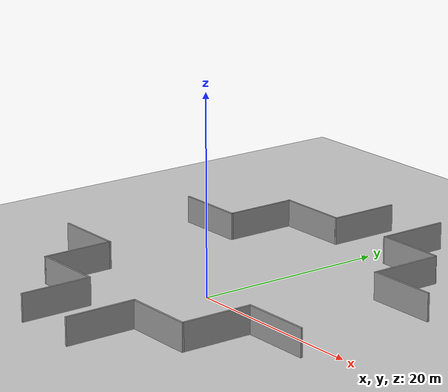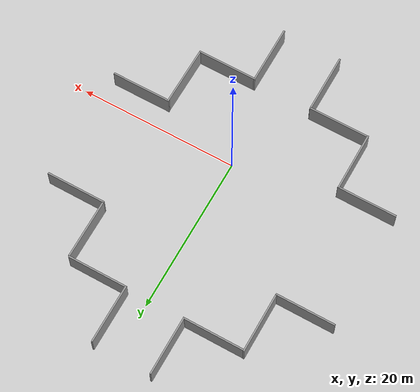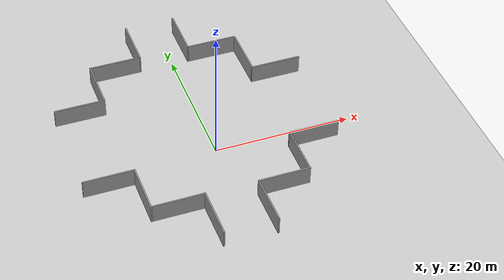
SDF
<sdf version="1.6">
 <world name="default">
  <light name="sun" type="directional">
   <pose>0 0 10 0 -0 0</pose>
   <diffuse>0.8 0.8 0.8 1</diffuse>
   <specular>0.1 0.1 0.1 1</specular>
   <attenuation>
    <range>1000</range>
    <constant>0.9</constant>
    <linear>0.01</linear>
    <quadratic>0.001</quadratic>
   </attenuation>
   <direction>-0.5 0.5 -1</direction>
  </light>
  <model name="ground_plane">
   <static>1</static>
   <link name="link">
    <collision name="collision">
     <geometry><plane><normal>0 0 1</normal><size>100 100</size></plane></geometry>
     <surface><friction><ode><mu>100</mu><mu2>50</mu2></ode></friction></surface>
    </collision>
    <visual name="visual">
     <cast_shadows>0</cast_shadows>
     <geometry><plane><normal>0 0 1</normal><size>100 100</size></plane></geometry>
     <material>
      <script><uri>file://media/materials/scripts/gazebo.material</uri><name>Gazebo/Grey</name></script>
     </material>
    </visual>
   </link>
  </model>
  <gravity>0 0 -9.8</gravity>
  <magnetic_field>6e-06 2.3e-05 -4.2e-05</magnetic_field>
  <atmosphere type="adiabatic"/>
  <physics name="default_physics" default="0" type="ode">
   <max_step_size>0.001</max_step_size>
   <real_time_factor>1</real_time_factor>
   <real_time_update_rate>1000</real_time_update_rate>
  </physics>
  <scene><ambient>0.4 0.4 0.4 1</ambient><background>0.7 0.7 0.7 1</background><shadows>1</shadows></scene>
  <spherical_coordinates>
   <surface_model>EARTH_WGS84</surface_model>
   <latitude_deg>0</latitude_deg>
   <longitude_deg>0</longitude_deg>
   <elevation>0</elevation>
   <heading_deg>0</heading_deg>
  </spherical_coordinates>
  <model name="grey_wall">
   <static>1</static>
   <link name="link">
    <pose>0 0 1.4 0 -0 0</pose>
    <collision name="collision"><geometry><box><size>7.5 0.2 2.8</size></box></geometry></collision>
    <visual name="visual">
     <cast_shadows>0</cast_shadows>
     <geometry><box><size>7.5 0.2 2.8</size></box></geometry>
     <material>
      <script>
       <uri>model://grey_wall/materials/scripts</uri>
       <uri>model://grey_wall/materials/textures</uri>
       <name>vrc/grey_wall</name>
      </script>
     </material>
    </visual>
   </link>
   <pose>-8.69444 -9.87973 0 0 -0 0</pose>
  </model>
  <model name="grey_wall_0">
   <static>1</static>
   <link name="link">
    <pose>0 0 1.4 0 -0 0</pose>
    <collision name="collision"><geometry><box><size>7.5 0.2 2.8</size></box></geometry></collision>
    <visual name="visual">
     <cast_shadows>0</cast_shadows>
     <geometry><box><size>7.5 0.2 2.8</size></box></geometry>
     <material>
      <script>
       <uri>model://grey_wall/materials/scripts</uri>
       <uri>model://grey_wall/materials/textures</uri>
       <name>vrc/grey_wall</name>
      </script>
     </material>
    </visual>
   </link>
   <pose>6.33409 -10.0577 0 0 -0 0</pose>
  </model>
  <model name="grey_wall_0_clone">
   <static>1</static>
   <link name="link">
    <pose>0 0 1.4 0 -0 0</pose>
    <collision name="collision"><geometry><box><size>7.5 0.2 2.8</size></box></geometry></collision>
    <visual name="visual">
     <cast_shadows>0</cast_shadows>
     <geometry><box><size>7.5 0.2 2.8</size></box></geometry>
     <material>
      <script>
       <uri>model://grey_wall/materials/scripts</uri>
       <uri>model://grey_wall/materials/textures</uri>
       <name>vrc/grey_wall</name>
      </script>
     </material>
    </visual>
   </link>
   <pose>10.0162 -6.24499 0 0 -0 1.56168</pose>
  </model>
  <model name="grey_wall_0_clone_0">
   <static>1</static>
   <link name="link">
    <pose>0 0 1.4 0 -0 0</pose>
    <collision name="collision"><geometry><box><size>7.5 0.2 2.8</size></box></geometry></collision>
    <visual name="visual">
     <cast_shadows>0</cast_shadows>
     <geometry><box><size>7.5 0.2 2.8</size></box></geometry>
     <material>
      <script>
       <uri>model://grey_wall/materials/scripts</uri>
       <uri>model://grey_wall/materials/textures</uri>
       <name>vrc/grey_wall</name>
      </script>
     </material>
    </visual>
   </link>
   <pose>6.23066 19.8835 0 0 -0 0</pose>
  </model>
  <model name="grey_wall_0_clone_2">
   <static>1</static>
   <link name="link">
    <pose>0 0 1.4 0 -0 0</pose>
    <collision name="collision"><geometry><box><size>7.5 0.2 2.8</size></box></geometry></collision>
    <visual name="visual">
     <cast_shadows>0</cast_shadows>
     <geometry><box><size>7.5 0.2 2.8</size></box></geometry>
     <material>
      <script>
       <uri>model://grey_wall/materials/scripts</uri>
       <uri>model://grey_wall/materials/textures</uri>
       <name>vrc/grey_wall</name>
      </script>
     </material>
    </visual>
   </link>
   <pose>-8.79842 19.9113 0 0 -0 0</pose>
  </model>
  <model name="grey_wall_0_clone_clone_clone_clone">
   <static>1</static>
   <link name="link">
    <pose>0 0 1.4 0 -0 0</pose>
    <collision name="collision"><geometry><box><size>7.5 0.2 2.8</size></box></geometry></collision>
    <visual name="visual">
     <cast_shadows>0</cast_shadows>
     <geometry><box><size>7.5 0.2 2.8</size></box></geometry>
     <material>
      <script>
       <uri>model://grey_wall/materials/scripts</uri>
       <uri>model://grey_wall/materials/textures</uri>
       <name>vrc/grey_wall</name>
      </script>
     </material>
    </visual>
   </link>
   <pose>-12.5609 -6.23551 0 0 -0 1.57402</pose>
  </model>
  <model name="grey_wall_0_clone_clone_clone_clone_1_clone">
   <static>1</static>
   <link name="link">
    <pose>0 0 1.4 0 -0 0</pose>
    <collision name="collision"><geometry><box><size>7.5 0.2 2.8</size></box></geometry></collision>
    <visual name="visual">
     <cast_shadows>0</cast_shadows>
     <geometry><box><size>7.5 0.2 2.8</size></box></geometry>
     <material>
      <script>
       <uri>model://grey_wall/materials/scripts</uri>
       <uri>model://grey_wall/materials/textures</uri>
       <name>vrc/grey_wall</name>
      </script>
     </material>
    </visual>
   </link>
   <pose>-12.598 16.2966 0 0 -0 1.57402</pose>
  </model>
  <model name="grey_wall_0_clone_clone_clone_clone_2">
   <static>1</static>
   <link name="link">
    <pose>0 0 1.4 0 -0 0</pose>
    <collision name="collision"><geometry><box><size>7.5 0.2 2.8</size></box></geometry></collision>
    <visual name="visual">
     <cast_shadows>0</cast_shadows>
     <geometry><box><size>7.5 0.2 2.8</size></box></geometry>
     <material>
      <script>
       <uri>model://grey_wall/materials/scripts</uri>
       <uri>model://grey_wall/materials/textures</uri>
       <name>vrc/grey_wall</name>
      </script>
     </material>
    </visual>
   </link>
   <pose>10.0056 16.0709 0 0 -0 1.57402</pose>
  </model>
  <model name="grey_wall_0_clone_clone_clone_clone_0_clone">
   <static>1</static>
   <link name="link">
    <pose>0 0 1.4 0 -0 0</pose>
    <collision name="collision"><geometry><box><size>7.5 0.2 2.8</size></box></geometry></collision>
    <visual name="visual">
     <cast_shadows>0</cast_shadows>
     <geometry><box><size>7.5 0.2 2.8</size></box></geometry>
     <material>
      <script>
       <uri>model://grey_wall/materials/scripts</uri>
       <uri>model://grey_wall/materials/textures</uri>
       <name>vrc/grey_wall</name>
      </script>
     </material>
    </visual>
   </link>
   <pose>-4.97231 23.5761 0 0 -0 1.57402</pose>
  </model>
  <model name="grey_wall_0_clone_clone_clone_clone_0_clone_0">
   <static>1</static>
   <link name="link">
    <pose>0 0 1.4 0 -0 0</pose>
    <collision name="collision"><geometry><box><size>7.5 0.2 2.8</size></box></geometry></collision>
    <visual name="visual">
     <cast_shadows>0</cast_shadows>
     <geometry><box><size>7.5 0.2 2.8</size></box></geometry>
     <material>
      <script>
       <uri>model://grey_wall/materials/scripts</uri>
       <uri>model://grey_wall/materials/textures</uri>
       <name>vrc/grey_wall</name>
      </script>
     </material>
    </visual>
   </link>
   <pose>2.52334 23.5333 0 0 -0 1.57402</pose>
  </model>
  <model name="grey_wall_clone">
   <static>1</static>
   <link name="link">
    <pose>0 0 1.4 0 -0 0</pose>
    <collision name="collision"><geometry><box><size>7.5 0.2 2.8</size></box></geometry></collision>
    <visual name="visual">
     <cast_shadows>0</cast_shadows>
     <geometry><box><size>7.5 0.2 2.8</size></box></geometry>
     <material>
      <script>
       <uri>model://grey_wall/materials/scripts</uri>
       <uri>model://grey_wall/materials/textures</uri>
       <name>vrc/grey_wall</name>
      </script>
     </material>
    </visual>
   </link>
   <pose>-16.2118 -2.53005 0 0 -0 0</pose>
  </model>
  <model name="grey_wall_clone_0">
   <static>1</static>
   <link name="link">
    <pose>0 0 1.4 0 -0 0</pose>
    <collision name="collision"><geometry><box><size>7.5 0.2 2.8</size></box></geometry></collision>
    <visual name="visual">
     <cast_shadows>0</cast_shadows>
     <geometry><box><size>7.5 0.2 2.8</size></box></geometry>
     <material>
      <script>
       <uri>model://grey_wall/materials/scripts</uri>
       <uri>model://grey_wall/materials/textures</uri>
       <name>vrc/grey_wall</name>
      </script>
     </material>
    </visual>
   </link>
   <pose>-16.2433 12.4275 0 0 -0 0</pose>
  </model>
  <model name="grey_wall_clone_clone">
   <static>1</static>
   <link name="link">
    <pose>0 0 1.4 0 -0 0</pose>
    <collision name="collision"><geometry><box><size>7.5 0.2 2.8</size></box></geometry></collision>
    <visual name="visual">
     <cast_shadows>0</cast_shadows>
     <geometry><box><size>7.5 0.2 2.8</size></box></geometry>
     <material>
      <script>
       <uri>model://grey_wall/materials/scripts</uri>
       <uri>model://grey_wall/materials/textures</uri>
       <name>vrc/grey_wall</name>
      </script>
     </material>
    </visual>
   </link>
   <pose>13.679 -2.57328 0 0 -0 0</pose>
  </model>
  <model name="grey_wall_clone_clone_0">
   <static>1</static>
   <link name="link">
    <pose>0 0 1.4 0 -0 0</pose>
    <collision name="collision"><geometry><box><size>7.5 0.2 2.8</size></box></geometry></collision>
    <visual name="visual">
     <cast_shadows>0</cast_shadows>
     <geometry><box><size>7.5 0.2 2.8</size></box></geometry>
     <material>
      <script>
       <uri>model://grey_wall/materials/scripts</uri>
       <uri>model://grey_wall/materials/textures</uri>
       <name>vrc/grey_wall</name>
      </script>
     </material>
    </visual>
   </link>
   <pose>13.6807 12.2639 0 0 -0 0</pose>
  </model>
  <model name="ball_bearing">
   <link name="link">
    <pose>0 0 0.003 0 -0 0</pose>
    <inertial>
     <mass>0.0011</mass>
     <inertia>
      <ixx>3.96e-09</ixx>
      <ixy>0</ixy>
      <ixz>0</ixz>
      <iyy>3.96e-09</iyy>
      <iyz>0</iyz>
      <izz>3.96e-09</izz>
     </inertia>
    </inertial>
    <collision name="collision">
     <geometry><sphere><radius>0.003</radius></sphere></geometry>
     <surface>
      <contact>
       <poissons_ratio>0.305</poissons_ratio>
       <elastic_modulus>2e+11</elastic_modulus>
       <ode><kp>100000</kp><kd>100</kd><max_vel>100</max_vel><min_depth>0.001</min_depth></ode>
      </contact>
      <friction>
       <torsional>
        <coefficient>1</coefficient>
        <use_patch_radius>0</use_patch_radius>
        <surface_radius>0.01</surface_radius>
       </torsional>
      </friction>
     </surface>
    </collision>
    <visual name="visual">
     <geometry><sphere><radius>0.003</radius></sphere></geometry>
     <material>
      <script><uri>file://media/materials/scripts/gazebo.material</uri><name>Gazebo/Grey</name></script>
     </material>
    </visual>
    <velocity_decay><linear>0</linear><angular>0.005</angular></velocity_decay>
   </link>
   <pose>-5.88015 -3.98956 -0.001 0 -0 0</pose>
  </model>
  <model name="grey_wall_0_clone_clone_clone_clone_clone">
   <static>1</static>
   <link name="link">
    <pose>0 0 1.4 0 -0 0</pose>
    <collision name="collision"><geometry><box><size>7.5 0.2 2.8</size></box></geometry></collision>
    <visual name="visual">
     <cast_shadows>0</cast_shadows>
     <geometry><box><size>7.5 0.2 2.8</size></box></geometry>
     <material>
      <script>
       <uri>model://grey_wall/materials/scripts</uri>
       <uri>model://grey_wall/materials/textures</uri>
       <name>vrc/grey_wall</name>
      </script>
     </material>
    </visual>
   </link>
   <pose>-4.9888 -13.5556 0 0 -0 1.57402</pose>
  </model>
  <model name="grey_wall_0_clone_clone_clone_clone_clone_0">
   <static>1</static>
   <link name="link">
    <pose>0 0 1.4 0 -0 0</pose>
    <collision name="collision"><geometry><box><size>7.5 0.2 2.8</size></box></geometry></collision>
    <visual name="visual">
     <cast_shadows>0</cast_shadows>
     <geometry><box><size>7.5 0.2 2.8</size></box></geometry>
     <material>
      <script>
       <uri>model://grey_wall/materials/scripts</uri>
       <uri>model://grey_wall/materials/textures</uri>
       <name>vrc/grey_wall</name>
      </script>
     </material>
    </visual>
   </link>
   <pose>2.58909 -13.7077 0 0 -0 1.57402</pose>
  </model>
 </world>
</sdf>
